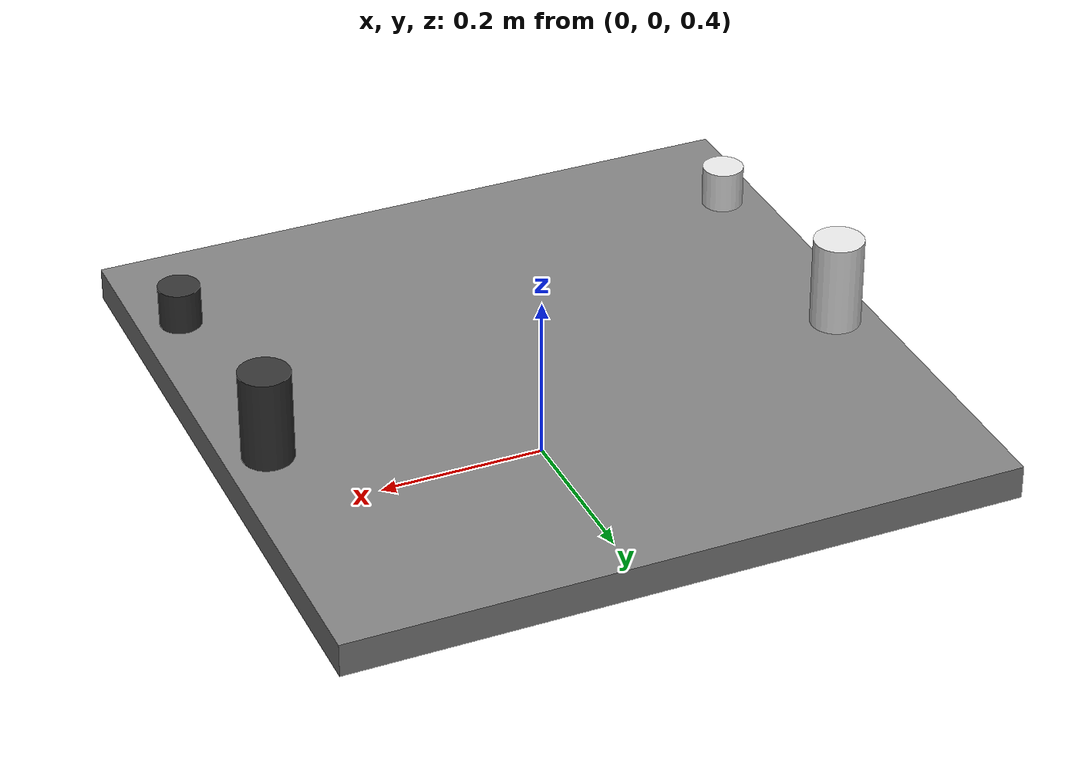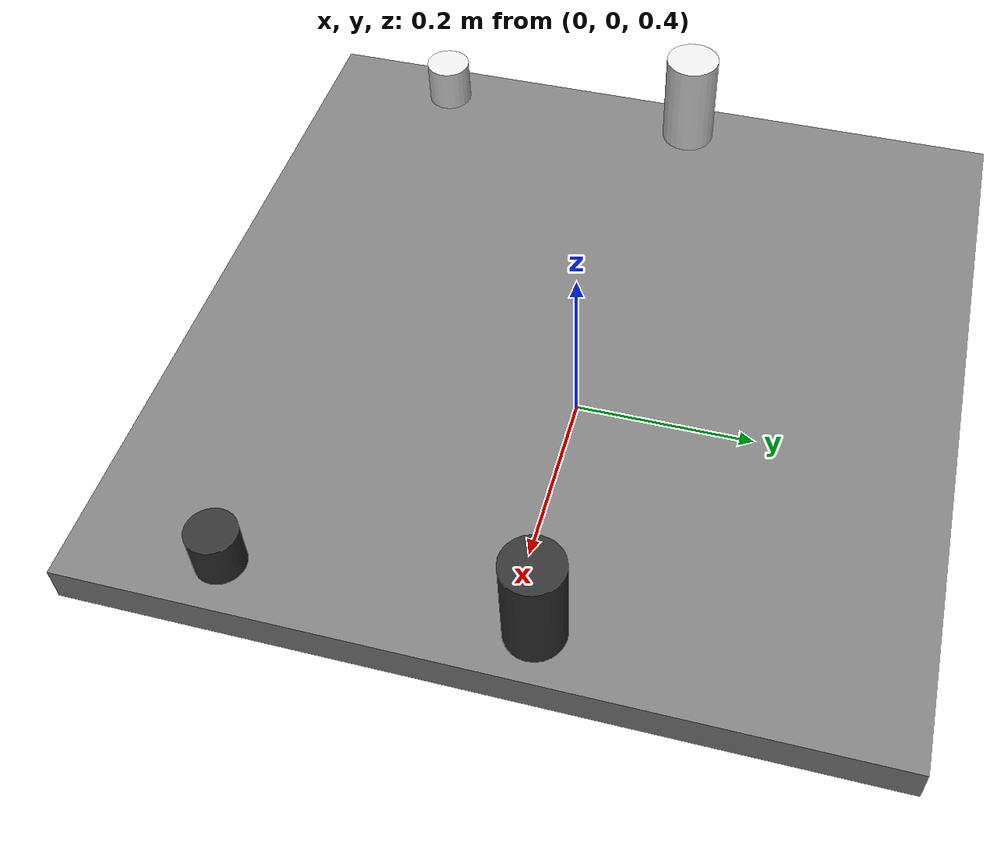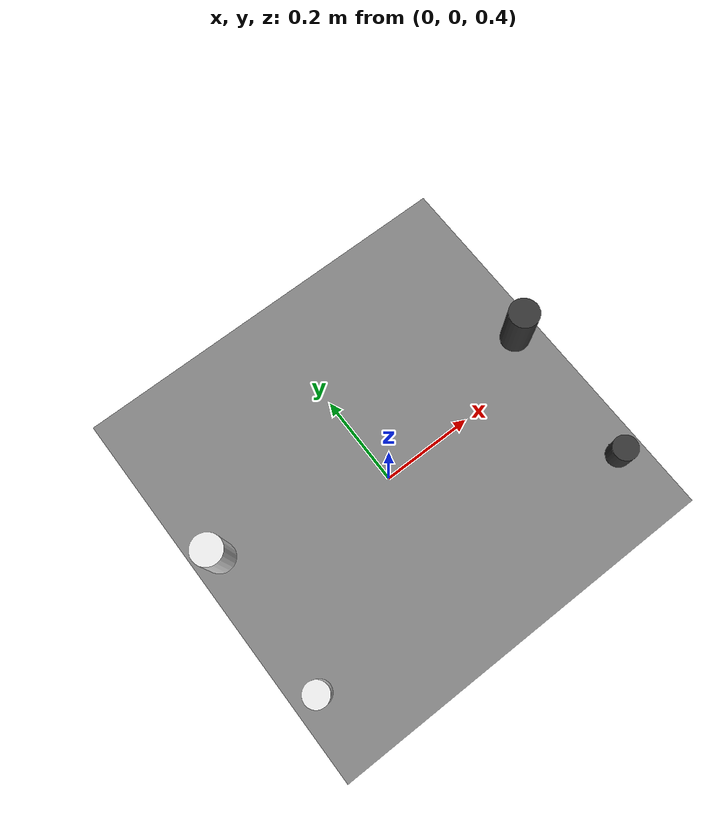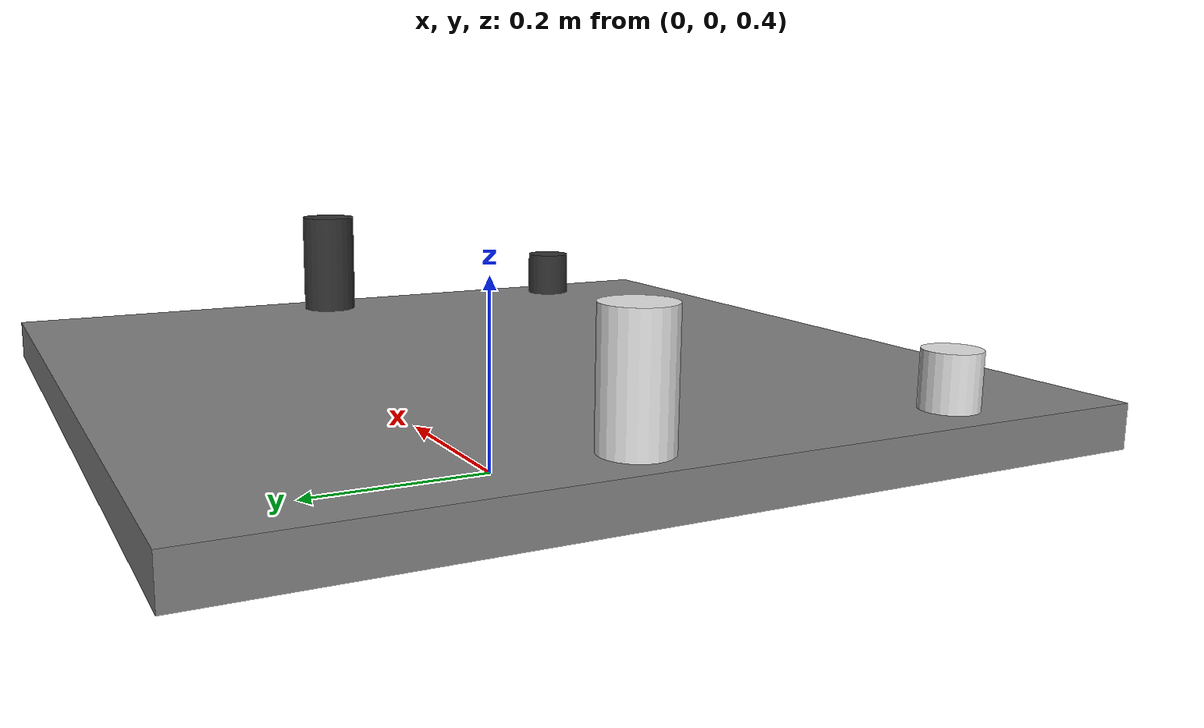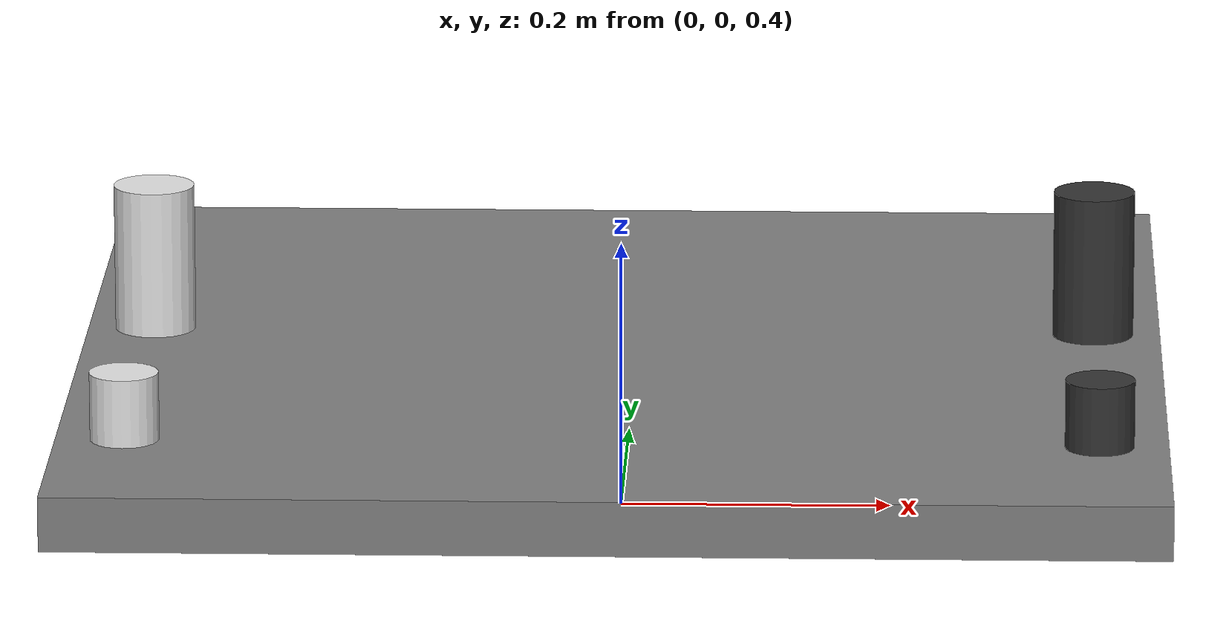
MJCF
<mujoco model="chess_set">
    <asset>
        <texture name="grid" type="2d" builtin="checker" rgb1=".1 .1 .1" rgb2=".9 .9 .9" width="512" height="512"/>
        <material name="board_mat" texture="grid" texrepeat="4 4" reflectance="0.2"/>
        <material name="white_piece" rgba="0.9 0.9 0.9 1"/>
        <material name="black_piece" rgba="0.2 0.2 0.2 1"/>
    </asset>

    <worldbody>
        <body name="chess_set_root" pos="0 0 0.5">

            <geom name="board_geom" type="box" size="0.4 0.4 0.02" material="board_mat"/>

            <body name="w_pawn_1" pos="-0.35 -0.25 0.04">
                <joint type="free" damping="0.01"/>
                <geom type="cylinder" size="0.025 0.03" material="white_piece"/>
            </body>

            <body name="w_king" pos="-0.35 0.05 0.07">
                <joint type="free" damping="0.01"/>
                <geom type="cylinder" size="0.03 0.06" material="white_piece"/>
            </body>

            <body name="b_pawn_1" pos="0.35 -0.25 0.04">
                <joint type="free" damping="0.01"/>
                <geom type="cylinder" size="0.025 0.03" material="black_piece"/>
            </body>

            <body name="b_king" pos="0.35 0.05 0.07">
                <joint type="free" damping="0.01"/>
                <geom type="cylinder" size="0.03 0.06" material="black_piece"/>
            </body>
        </body>
    </worldbody>
</mujoco>
